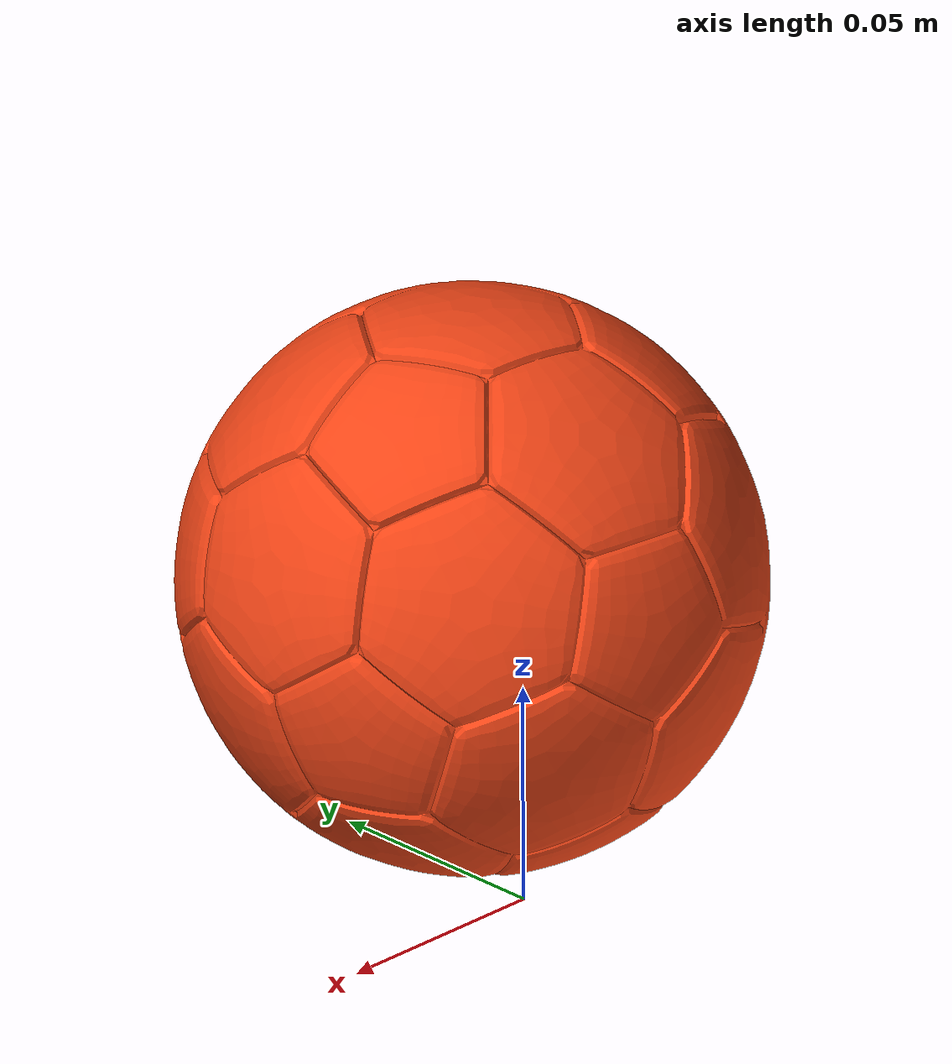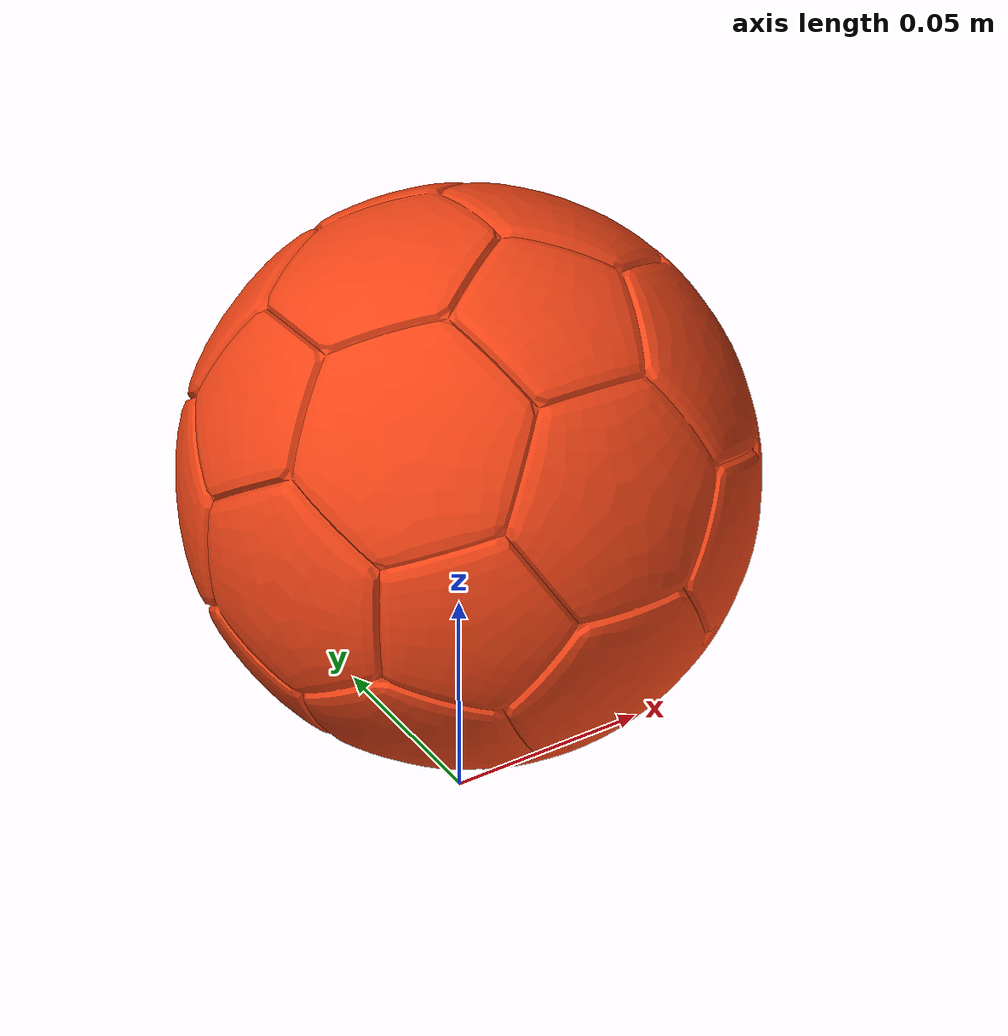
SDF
<sdf version="1.4">
  <model name="soccer">
    <pose>0 0 0  0 0 0</pose>
    <static>false</static>
    <link name="link">
      <inertial>
         <pose>0 0 0 0 0 0</pose>
         <mass>0.3</mass>
         <inertia>
           <ixx>0.0012</ixx>
           <ixy>0</ixy>
           <ixz>0</ixz>
           <iyy>0.0012</iyy>
           <iyz>0</iyz>
           <izz>0.0012</izz>
         </inertia>
      </inertial>
      <collision name="collision">
        <geometry>
          <mesh>
            <uri>model://soccer/Soccer.DAE</uri>
          </mesh>
        </geometry>
      </collision>
      <visual name="visual">
        <geometry>
          <mesh>
            <uri>model://soccer/Soccer.DAE</uri>
          </mesh>
        </geometry>
      </visual>
    </link>
  </model>
</sdf>
